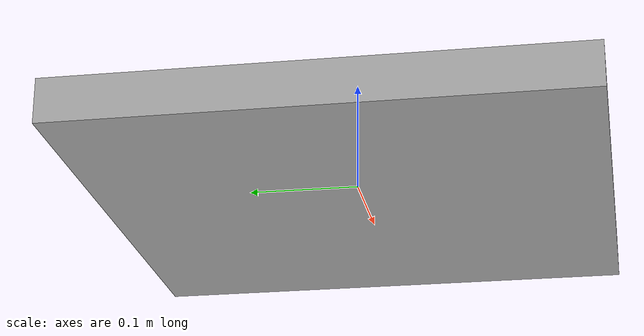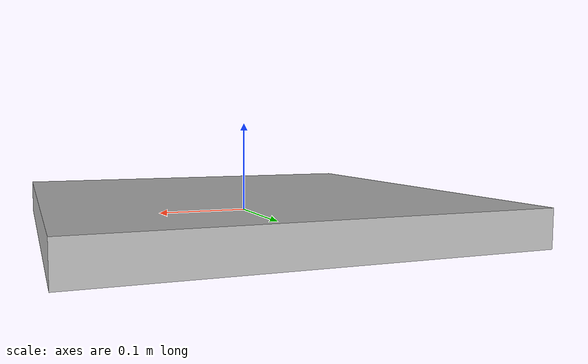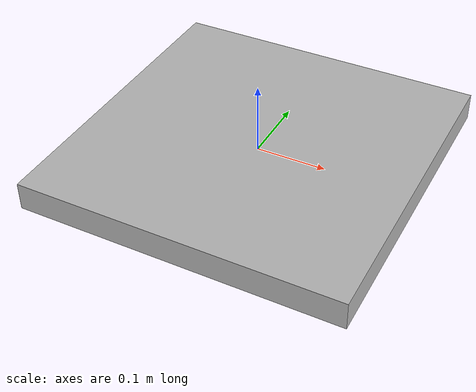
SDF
<?xml version="1.0" ?>
<sdf version="1.4">
  <model name="chessboard2">
    <static>0</static>
    <link name="link">

      <inertial>
        <mass>0.05</mass>
        <inertia>
          <ixx>0.000015</ixx>
          <ixy>0.0</ixy>
          <ixz>0.0</ixz>
          <iyy>0.000015</iyy>
          <iyz>0.0</iyz>
          <izz>0.0000108</izz>
        </inertia>
      </inertial>

      <collision name="colision">
        <pose>0 0 0 0 0 0</pose>
          <geometry>
            <box>
              <size>0.46 0.46 0.04</size>
            </box>
          </geometry>
        <surface>
          <friction>
            <ode>
              <mu>30.0</mu>
              <mu2>30.0</mu2>
              <fdir1>0 0 0</fdir1>
            </ode>
          </friction>
          <contact>
            <ode>
              <kp>1000000.0</kp>
              <kd>100.0</kd>
              <min_depth>0.0025</min_depth>
              <max_vel>1.0</max_vel>
            </ode>
          </contact>
        </surface>
      </collision>

      <visual name="visual1">
        <pose>0 0 0 0 0 0</pose>
        <geometry>
          <mesh>
             <uri>model://chessboard2/meshes/chessboard2.dae</uri>
    		<!-- the dae is a cube of 5x5x5 cm and the chessboard is 46x46x4-->
	    <scale> 9.2 9.2 0.8 </scale>
          </mesh>
        </geometry>
      </visual>

      <velocity_decay>
        <linear>0.000000</linear>
        <angular>0.000000</angular>
      </velocity_decay>
      <self_collide>0</self_collide>
      <kinematic>0</kinematic>
      <gravity>1</gravity>
    </link>
  </model>
</sdf>
